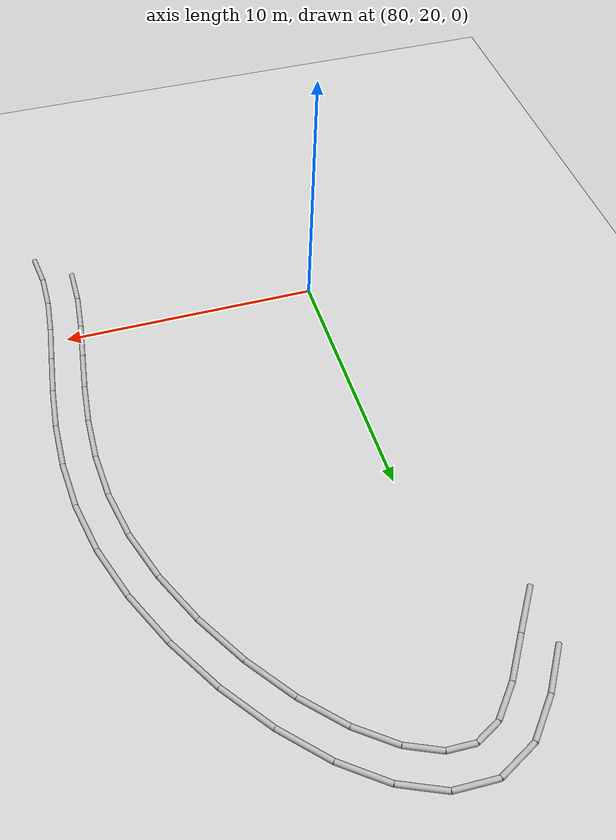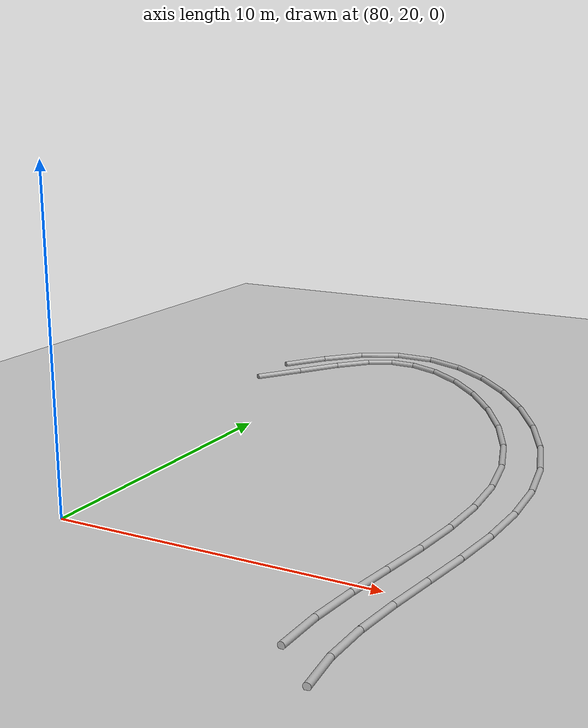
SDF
<sdf version="1.6">
 <world name="default">
  <model name="ground_plane">
   <static>true</static>
   <link name="link">
    <collision name="collision">
     <geometry><plane><normal>0 0 1</normal><size>5000 5000</size></plane></geometry>
     <surface>
      <friction>
       <ode><mu>50</mu></ode>
       <bullet><friction>1</friction><rolling_friction>0.1</rolling_friction></bullet>
      </friction>
     </surface>
    </collision>
    <visual name="visual">
     <geometry><plane><normal>0 0 1</normal><size>5000 5000</size></plane></geometry>
     <material>
      <ambient>0.8 0.8 0.8 1</ambient>
      <diffuse>0.8 0.8 0.8 1</diffuse>
      <specular>0.8 0.8 0.8 1</specular>
     </material>
    </visual>
    <inertial>
     <mass>1</mass>
     <inertia><ixx>1</ixx><ixy>0</ixy><ixz>0</ixz><iyy>1</iyy><iyz>0</iyz><izz>1</izz></inertia>
    </inertial>
   </link>
  </model>
  <model name="line_model">
   <static>true</static>
   <link name="cylinder_(90.58067326967499, 15.154883601614406)_(90.41822750461488, 16.4879845579374)">
    <pose>90.49945038714493 15.821434079775901 0.05 0 1.5707963267948966 1.6920540696821837</pose>
    <visual name="visual">
     <geometry><cylinder><radius>0.1</radius><length>1.342961945229738</length></cylinder></geometry>
    </visual>
    <collision name="collision">
     <geometry><cylinder><radius>0.1</radius><length>1.342961945229738</length></cylinder></geometry>
    </collision>
   </link>
   <link name="cylinder_(90.41822750461488, 16.4879845579374)_(90.42906840644926, 17.895092243744916)">
    <pose>90.42364795553206 17.191538400841157 0.05 0 1.5707963267948966 1.5630920924602991</pose>
    <visual name="visual">
     <geometry><cylinder><radius>0.1</radius><length>1.407149446438142</length></cylinder></geometry>
    </visual>
    <collision name="collision">
     <geometry><cylinder><radius>0.1</radius><length>1.407149446438142</length></cylinder></geometry>
    </collision>
   </link>
   <link name="cylinder_(90.42906840644926, 17.895092243744916)_(90.56203577957187, 19.380073374426146)">
    <pose>90.49555209301056 18.63758280908553 0.05 0 1.5707963267948966 1.481493030465346</pose>
    <visual name="visual">
     <geometry><cylinder><radius>0.1</radius><length>1.490922292003991</length></cylinder></geometry>
    </visual>
    <collision name="collision">
     <geometry><cylinder><radius>0.1</radius><length>1.490922292003991</length></cylinder></geometry>
    </collision>
   </link>
   <link name="cylinder_(90.56203577957187, 19.380073374426146)_(90.76170952618627, 20.943576841453293)">
    <pose>90.66187265287907 20.16182510793972 0.05 0 1.5707963267948966 1.44377472683457</pose>
    <visual name="visual">
     <geometry><cylinder><radius>0.1</radius><length>1.5762019846748503</length></cylinder></geometry>
    </visual>
    <collision name="collision">
     <geometry><cylinder><radius>0.1</radius><length>1.5762019846748503</length></cylinder></geometry>
    </collision>
   </link>
   <link name="cylinder_(90.76170952618627, 20.943576841453293)_(90.96914392449533, 22.58637074523596)">
    <pose>90.8654267253408 21.764973793344627 0.05 0 1.5707963267948966 1.4451917785495232</pose>
    <visual name="visual">
     <geometry><cylinder><radius>0.1</radius><length>1.65583840996256</length></cylinder></geometry>
    </visual>
    <collision name="collision">
     <geometry><cylinder><radius>0.1</radius><length>1.65583840996256</length></cylinder></geometry>
    </collision>
   </link>
   <link name="cylinder_(90.96914392449533, 22.58637074523596)_(91.12296777373669, 24.310024388432605)">
    <pose>91.04605584911602 23.44819756683428 0.05 0 1.5707963267948966 1.481789220266007</pose>
    <visual name="visual">
     <geometry><cylinder><radius>0.1</radius><length>1.7305038741073353</length></cylinder></geometry>
    </visual>
    <collision name="collision">
     <geometry><cylinder><radius>0.1</radius><length>1.7305038741073353</length></cylinder></geometry>
    </collision>
   </link>
   <link name="cylinder_(91.12296777373669, 24.310024388432605)_(91.160082585372, 26.11618888143663)">
    <pose>91.14152517955435 25.21310663493462 0.05 0 1.5707963267948966 1.550250253018669</pose>
    <visual name="visual">
     <geometry><cylinder><radius>0.1</radius><length>1.8065457882465128</length></cylinder></geometry>
    </visual>
    <collision name="collision">
     <geometry><cylinder><radius>0.1</radius><length>1.8065457882465128</length></cylinder></geometry>
    </collision>
   </link>
   <link name="cylinder_(91.160082585372, 26.11618888143663)_(91.01640669952204, 28.005310869900008)">
    <pose>91.08824464244702 27.06074987566832 0.05 0 1.5707963267948966 1.6467045130591689</pose>
    <visual name="visual">
     <geometry><cylinder><radius>0.1</radius><length>1.8945776963404248</length></cylinder></geometry>
    </visual>
    <collision name="collision">
     <geometry><cylinder><radius>0.1</radius><length>1.8945776963404248</length></cylinder></geometry>
    </collision>
   </link>
   <link name="cylinder_(91.01640669952204, 28.005310869900008)_(90.62822141517893, 29.975603427736832)">
    <pose>90.82231405735048 28.99045714881842 0.05 0 1.5707963267948966 1.7653240092137423</pose>
    <visual name="visual">
     <geometry><cylinder><radius>0.1</radius><length>2.0081684636622787</length></cylinder></geometry>
    </visual>
    <collision name="collision">
     <geometry><cylinder><radius>0.1</radius><length>2.0081684636622787</length></cylinder></geometry>
    </collision>
   </link>
   <link name="cylinder_(90.62822141517893, 29.975603427736832)_(89.95124162003579, 32.00422478893094)">
    <pose>90.28973151760735 30.989914108333885 0.05 0 1.5707963267948966 1.8928896399755804</pose>
    <visual name="visual">
     <geometry><cylinder><radius>0.1</radius><length>2.1385991373151456</length></cylinder></geometry>
    </visual>
    <collision name="collision">
     <geometry><cylinder><radius>0.1</radius><length>2.1385991373151456</length></cylinder></geometry>
    </collision>
   </link>
   <link name="cylinder_(89.95124162003579, 32.00422478893094)_(89.01974079344794, 34.014497129684784)">
    <pose>89.48549120674187 33.00936095930786 0.05 0 1.5707963267948966 2.0047133338656353</pose>
    <visual name="visual">
     <geometry><cylinder><radius>0.1</radius><length>2.215601199208419</length></cylinder></geometry>
    </visual>
    <collision name="collision">
     <geometry><cylinder><radius>0.1</radius><length>2.215601199208419</length></cylinder></geometry>
    </collision>
   </link>
   <link name="cylinder_(89.01974079344794, 34.014497129684784)_(87.88644706328553, 35.924791481268414)">
    <pose>88.45309392836674 34.9696443054766 0.05 0 1.5707963267948966 2.106242302440101</pose>
    <visual name="visual">
     <geometry><cylinder><radius>0.1</radius><length>2.221166177600799</length></cylinder></geometry>
    </visual>
    <collision name="collision">
     <geometry><cylinder><radius>0.1</radius><length>2.221166177600799</length></cylinder></geometry>
    </collision>
   </link>
   <link name="cylinder_(87.88644706328553, 35.924791481268414)_(86.60120994242394, 37.651701274805944)">
    <pose>87.24382850285474 36.78824637803718 0.05 0 1.5707963267948966 2.210601493892815</pose>
    <visual name="visual">
     <geometry><cylinder><radius>0.1</radius><length>2.152684810151369</length></cylinder></geometry>
    </visual>
    <collision name="collision">
     <geometry><cylinder><radius>0.1</radius><length>2.152684810151369</length></cylinder></geometry>
    </collision>
   </link>
   <link name="cylinder_(86.60120994242394, 37.651701274805944)_(85.2093477446173, 39.111179545177066)">
    <pose>85.90527884352062 38.381440409991505 0.05 0 1.5707963267948966 2.3324851495835954</pose>
    <visual name="visual">
     <geometry><cylinder><radius>0.1</radius><length>2.0167690000018808</length></cylinder></geometry>
    </visual>
    <collision name="collision">
     <geometry><cylinder><radius>0.1</radius><length>2.0167690000018808</length></cylinder></geometry>
    </collision>
   </link>
   <link name="cylinder_(85.2093477446173, 39.111179545177066)_(83.74649113533678, 40.21730480069357)">
    <pose>84.47791943997704 39.66424217293532 0.05 0 1.5707963267948966 2.4941731385395967</pose>
    <visual name="visual">
     <geometry><cylinder><radius>0.1</radius><length>1.83397452005396</length></cylinder></geometry>
    </visual>
    <collision name="collision">
     <geometry><cylinder><radius>0.1</radius><length>1.83397452005396</length></cylinder></geometry>
    </collision>
   </link>
   <link name="cylinder_(83.74649113533678, 40.21730480069357)_(82.23035128188783, 40.87034226437323)">
    <pose>82.98842120861231 40.543823532533395 0.05 0 1.5707963267948966 2.734883933302976</pose>
    <visual name="visual">
     <geometry><cylinder><radius>0.1</radius><length>1.6507991955975019</length></cylinder></geometry>
    </visual>
    <collision name="collision">
     <geometry><cylinder><radius>0.1</radius><length>1.6507991955975019</length></cylinder></geometry>
    </collision>
   </link>
   <link name="cylinder_(82.23035128188783, 40.87034226437323)_(80.68407252088817, 40.917977708723576)">
    <pose>81.457211901388 40.8941599865484 0.05 0 1.5707963267948966 3.1107958886076097</pose>
    <visual name="visual">
     <geometry><cylinder><radius>0.1</radius><length>1.547012327771543</length></cylinder></geometry>
    </visual>
    <collision name="collision">
     <geometry><cylinder><radius>0.1</radius><length>1.547012327771543</length></cylinder></geometry>
    </collision>
   </link>
   <link name="cylinder_(80.68407252088817, 40.917977708723576)_(79.26740408687188, 40.20182036298354)">
    <pose>79.97573830388002 40.55989903585356 0.05 0 1.5707963267948966 -2.673537048637024</pose>
    <visual name="visual">
     <geometry><cylinder><radius>0.1</radius><length>1.5873974914291549</length></cylinder></geometry>
    </visual>
    <collision name="collision">
     <geometry><cylinder><radius>0.1</radius><length>1.5873974914291549</length></cylinder></geometry>
    </collision>
   </link>
   <link name="cylinder_(79.26740408687188, 40.20182036298354)_(78.146234569484, 38.92680250266331)">
    <pose>78.70681932817794 39.56431143282342 0.05 0 1.5707963267948966 -2.2920770257070733</pose>
    <visual name="visual">
     <geometry><cylinder><radius>0.1</radius><length>1.6978491189900724</length></cylinder></geometry>
    </visual>
    <collision name="collision">
     <geometry><cylinder><radius>0.1</radius><length>1.6978491189900724</length></cylinder></geometry>
    </collision>
   </link>
   <link name="cylinder_(78.146234569484, 38.92680250266331)_(77.15760487872598, 37.420404247764)">
    <pose>77.65191972410499 38.17360337521365 0.05 0 1.5707963267948966 -2.151578588088235</pose>
    <visual name="visual">
     <geometry><cylinder><radius>0.1</radius><length>1.8018391625813828</length></cylinder></geometry>
    </visual>
    <collision name="collision">
     <geometry><cylinder><radius>0.1</radius><length>1.8018391625813828</length></cylinder></geometry>
    </collision>
   </link>
   <link name="cylinder_(89.21968764253754, 16.428805177984238)_(89.23093710289092, 17.96203534969024)">
    <pose>89.22531237271423 17.19542026383724 0.05 0 1.5707963267948966 1.5634593602367173</pose>
    <visual name="visual">
     <geometry><cylinder><radius>0.1</radius><length>1.5332714403483352</length></cylinder></geometry>
    </visual>
    <collision name="collision">
     <geometry><cylinder><radius>0.1</radius><length>1.5332714403483352</length></cylinder></geometry>
    </collision>
   </link>
   <link name="cylinder_(89.23093710289092, 17.96203534969024)_(89.36994750290496, 19.517643504299176)">
    <pose>89.30044230289795 18.739839426994706 0.05 0 1.5707963267948966 1.4816722458785048</pose>
    <visual name="visual">
     <geometry><cylinder><radius>0.1</radius><length>1.5618068452910192</length></cylinder></geometry>
    </visual>
    <collision name="collision">
     <geometry><cylinder><radius>0.1</radius><length>1.5618068452910192</length></cylinder></geometry>
    </collision>
   </link>
   <link name="cylinder_(89.36994750290496, 19.517643504299176)_(89.5722246945086, 21.102088150856574)">
    <pose>89.47108609870679 20.309865827577873 0.05 0 1.5707963267948966 1.4438187788055796</pose>
    <visual name="visual">
     <geometry><cylinder><radius>0.1</radius><length>1.5973042603860583</length></cylinder></geometry>
    </visual>
    <collision name="collision">
     <geometry><cylinder><radius>0.1</radius><length>1.5973042603860583</length></cylinder></geometry>
    </collision>
   </link>
   <link name="cylinder_(89.5722246945086, 21.102088150856574)_(89.77680015363144, 22.72170858947056)">
    <pose>89.67451242407003 21.911898370163566 0.05 0 1.5707963267948966 1.4451509645347564</pose>
    <visual name="visual">
     <geometry><cylinder><radius>0.1</radius><length>1.6324893517727697</length></cylinder></geometry>
    </visual>
    <collision name="collision">
     <geometry><cylinder><radius>0.1</radius><length>1.6324893517727697</length></cylinder></geometry>
    </collision>
   </link>
   <link name="cylinder_(89.77680015363144, 22.72170858947056)_(89.9251308351683, 24.382042918000415)">
    <pose>89.85096549439987 23.551875753735487 0.05 0 1.5707963267948966 1.4816950315699506</pose>
    <visual name="visual">
     <geometry><cylinder><radius>0.1</radius><length>1.6669469318427264</length></cylinder></geometry>
    </visual>
    <collision name="collision">
     <geometry><cylinder><radius>0.1</radius><length>1.6669469318427264</length></cylinder></geometry>
    </collision>
   </link>
   <link name="cylinder_(89.9251308351683, 24.382042918000415)_(89.96040098179007, 26.08854742657053)">
    <pose>89.94276590847919 25.235295172285472 0.05 0 1.5707963267948966 1.5501312036569694</pose>
    <visual name="visual">
     <geometry><cylinder><radius>0.1</radius><length>1.706868952501288</length></cylinder></geometry>
    </visual>
    <collision name="collision">
     <geometry><cylinder><radius>0.1</radius><length>1.706868952501288</length></cylinder></geometry>
    </collision>
   </link>
   <link name="cylinder_(89.96040098179007, 26.08854742657053)_(89.82677800750838, 27.847882870046554)">
    <pose>89.89358949464923 26.96821514830854 0.05 0 1.5707963267948966 1.6466016113876012</pose>
    <visual name="visual">
     <geometry><cylinder><radius>0.1</radius><length>1.764402533983351</length></cylinder></geometry>
    </visual>
    <collision name="collision">
     <geometry><cylinder><radius>0.1</radius><length>1.764402533983351</length></cylinder></geometry>
    </collision>
   </link>
   <link name="cylinder_(89.82677800750838, 27.847882870046554)_(89.46806636746369, 29.668943575032195)">
    <pose>89.64742218748603 28.758413222539374 0.05 0 1.5707963267948966 1.7652858867214152</pose>
    <visual name="visual">
     <geometry><cylinder><radius>0.1</radius><length>1.856053914073174</length></cylinder></geometry>
    </visual>
    <collision name="collision">
     <geometry><cylinder><radius>0.1</radius><length>1.856053914073174</length></cylinder></geometry>
    </collision>
   </link>
   <link name="cylinder_(89.46806636746369, 29.668943575032195)_(88.8370966922568, 31.55848823007097)">
    <pose>89.15258152986024 30.613715902551583 0.05 0 1.5707963267948966 1.8930809418172776</pose>
    <visual name="visual">
     <geometry><cylinder><radius>0.1</radius><length>1.9921098700664845</length></cylinder></geometry>
    </visual>
    <collision name="collision">
     <geometry><cylinder><radius>0.1</radius><length>1.9921098700664845</length></cylinder></geometry>
    </collision>
   </link>
   <link name="cylinder_(88.8370966922568, 31.55848823007097)_(87.95827403098083, 33.454775491566686)">
    <pose>88.39768536161881 32.50663186081883 0.05 0 1.5707963267948966 2.0047737433493342</pose>
    <visual name="visual">
     <geometry><cylinder><radius>0.1</radius><length>2.0900322122118316</length></cylinder></geometry>
    </visual>
    <collision name="collision">
     <geometry><cylinder><radius>0.1</radius><length>2.0900322122118316</length></cylinder></geometry>
    </collision>
   </link>
   <link name="cylinder_(87.95827403098083, 33.454775491566686)_(86.88687530351744, 35.26082137872303)">
    <pose>87.42257466724914 34.35779843514486 0.05 0 1.5707963267948966 2.1062222473066514</pose>
    <visual name="visual">
     <geometry><cylinder><radius>0.1</radius><length>2.099927851075964</length></cylinder></geometry>
    </visual>
    <collision name="collision">
     <geometry><cylinder><radius>0.1</radius><length>2.099927851075964</length></cylinder></geometry>
    </collision>
   </link>
   <link name="cylinder_(86.88687530351744, 35.26082137872303)_(85.68108543506443, 36.881395562146075)">
    <pose>86.28398036929093 36.07110847043455 0.05 0 1.5707963267948966 2.2104792016228414</pose>
    <visual name="visual">
     <geometry><cylinder><radius>0.1</radius><length>2.0199479921129644</length></cylinder></geometry>
    </visual>
    <collision name="collision">
     <geometry><cylinder><radius>0.1</radius><length>2.0199479921129644</length></cylinder></geometry>
    </collision>
   </link>
   <link name="cylinder_(85.68108543506443, 36.881395562146075)_(84.40362054994067, 38.22190810868621)">
    <pose>85.04235299250254 37.55165183541614 0.05 0 1.5707963267948966 2.332116560302019</pose>
    <visual name="visual">
     <geometry><cylinder><radius>0.1</radius><length>1.8517263351142845</length></cylinder></geometry>
    </visual>
    <collision name="collision">
     <geometry><cylinder><radius>0.1</radius><length>1.8517263351142845</length></cylinder></geometry>
    </collision>
   </link>
   <link name="cylinder_(84.40362054994067, 38.22190810868621)_(83.1268844207481, 39.189643611761824)">
    <pose>83.76525248534438 38.705775860224016 0.05 0 1.5707963267948966 2.493006338103497</pose>
    <visual name="visual">
     <geometry><cylinder><radius>0.1</radius><length>1.6020509191341719</length></cylinder></geometry>
    </visual>
    <collision name="collision">
     <geometry><cylinder><radius>0.1</radius><length>1.6020509191341719</length></cylinder></geometry>
    </collision>
   </link>
   <link name="cylinder_(83.1268844207481, 39.189643611761824)_(81.94120031825437, 39.70569995008533)">
    <pose>82.53404236950124 39.44767178092358 0.05 0 1.5707963267948966 2.7310812779723457</pose>
    <visual name="visual">
     <geometry><cylinder><radius>0.1</radius><length>1.2931206189796123</length></cylinder></geometry>
    </visual>
    <collision name="collision">
     <geometry><cylinder><radius>0.1</radius><length>1.2931206189796123</length></cylinder></geometry>
    </collision>
   </link>
   <link name="cylinder_(81.94120031825437, 39.70569995008533)_(80.93145834391471, 39.74375445287932)">
    <pose>81.43632933108455 39.724727201482324 0.05 0 1.5707963267948966 3.103923127746228</pose>
    <visual name="visual">
     <geometry><cylinder><radius>0.1</radius><length>1.0104588066449098</length></cylinder></geometry>
    </visual>
    <collision name="collision">
     <geometry><cylinder><radius>0.1</radius><length>1.0104588066449098</length></cylinder></geometry>
    </collision>
   </link>
   <link name="cylinder_(80.93145834391471, 39.74375445287932)_(80.04452388883776, 39.28744362804739)">
    <pose>80.48799111637624 39.51559904046336 0.05 0 1.5707963267948966 -2.666427560885329</pose>
    <visual name="visual">
     <geometry><cylinder><radius>0.1</radius><length>0.9974328531091456</length></cylinder></geometry>
    </visual>
    <collision name="collision">
     <geometry><cylinder><radius>0.1</radius><length>0.9974328531091456</length></cylinder></geometry>
    </collision>
   </link>
   <link name="cylinder_(80.04452388883776, 39.28744362804739)_(79.12195804911121, 38.228258523157265)">
    <pose>79.58324096897448 38.75785107560233 0.05 0 1.5707963267948966 -2.2873647257296135</pose>
    <visual name="visual">
     <geometry><cylinder><radius>0.1</radius><length>1.4046354740826719</length></cylinder></geometry>
    </visual>
    <collision name="collision">
     <geometry><cylinder><radius>0.1</radius><length>1.4046354740826719</length></cylinder></geometry>
    </collision>
   </link>
   <link name="cylinder_(79.12195804911121, 38.228258523157265)_(78.17183869771534, 36.7790542961633)">
    <pose>78.64689837341328 37.50365640966028 0.05 0 1.5707963267948966 -2.1511083740956782</pose>
    <visual name="visual">
     <geometry><cylinder><radius>0.1</radius><length>1.732893439722731</length></cylinder></geometry>
    </visual>
    <collision name="collision">
     <geometry><cylinder><radius>0.1</radius><length>1.732893439722731</length></cylinder></geometry>
    </collision>
   </link>
   <link name="cylinder_(78.17183869771534, 36.7790542961633)_(77.14481329374476, 35.24451815333971)">
    <pose>77.65832599573005 36.0117862247515 0.05 0 1.5707963267948966 -2.1606019534216707</pose>
    <visual name="visual">
     <geometry><cylinder><radius>0.1</radius><length>1.846505443813487</length></cylinder></geometry>
    </visual>
    <collision name="collision">
     <geometry><cylinder><radius>0.1</radius><length>1.846505443813487</length></cylinder></geometry>
    </collision>
   </link>
  </model>
 </world>
</sdf>
